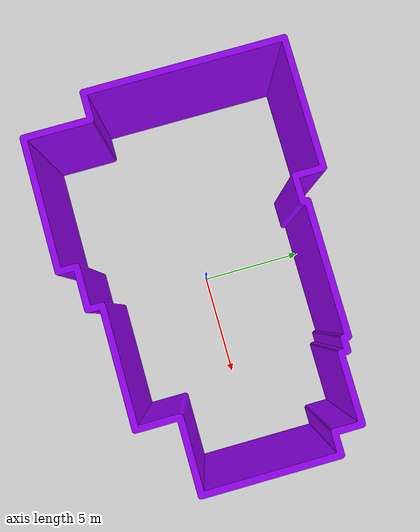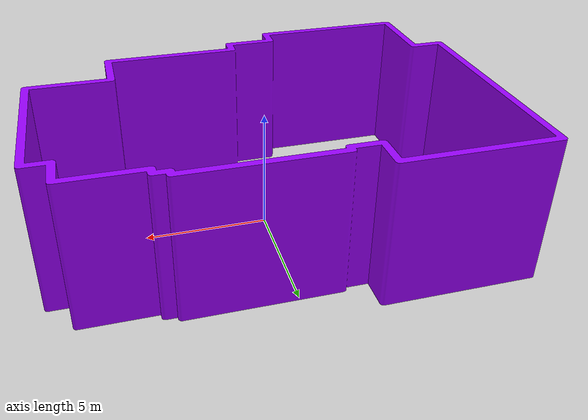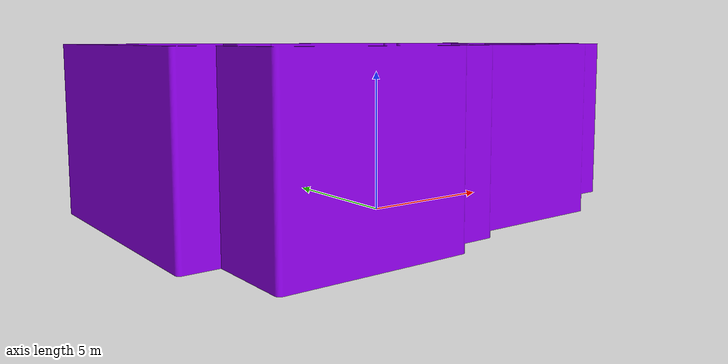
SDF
<?xml version="1.0" ?>
<sdf version="1.6">
  <model name="walls_10">
    <pose frame="">0 0 3 0 -0 0</pose>
    <static>1</static>
    <self_collide>0</self_collide>
    <allow_auto_disable>0</allow_auto_disable>
    <link name="mesh">
      <kinematic>0</kinematic>
      <gravity>1</gravity>
      <self_collide>0</self_collide>
      <collision name="collision">
        <geometry>
          <mesh>
            <uri>model://walls_10/meshes/axOTAvSVmB.stl</uri>
            <scale>1 1 1</scale>
          </mesh>
        </geometry>
        <pose frame="">-3.09795 -7.93164 -3 0 -0 0</pose>
        <max_contacts>20</max_contacts>
      </collision>
      <visual name="visual">
        <geometry>
          <mesh>
            <uri>model://walls_10/meshes/GZNuYgetbb.stl</uri>
            <scale>1 1 1</scale>
          </mesh>
        </geometry>
        <material>
          <ambient>0.6 0 0.980392 1</ambient>
          <diffuse>0.6 0.0 0.9803921568627451 1</diffuse>
        </material>
        <pose frame="">-3.09795 -7.93164 -3 0 -0 0</pose>
        <cast_shadows>1</cast_shadows>
        <transparency>0.0</transparency>
      </visual>
      <pose frame="">0 0 0 0 -0 0</pose>
    </link>
  </model>
</sdf>
